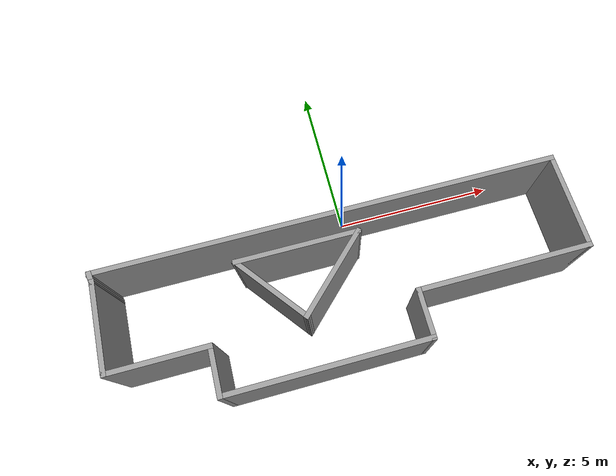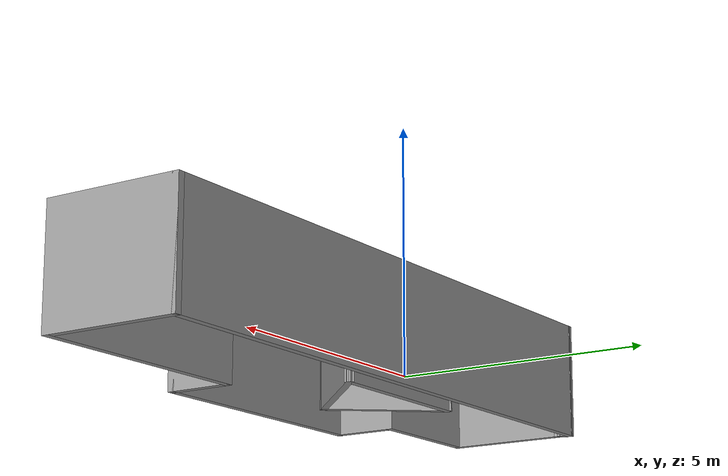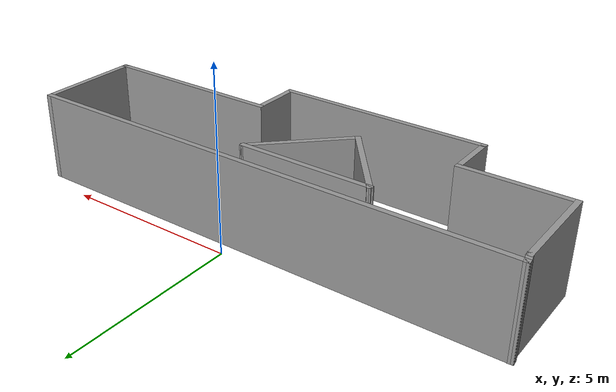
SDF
<?xml version='1.0'?>
<sdf version='1.6'>
  <model name='wuwuwuw'>
    <pose frame=''>-0.521626 -2.52337 0 0 -0 0</pose>
    <link name='Wall_0'>
      <collision name='Wall_0_Collision'>
        <geometry>
          <box>
            <size>2.75 0.15 2.5</size>
          </box>
        </geometry>
        <pose frame=''>0 0 1.25 0 -0 0</pose>
      </collision>
      <visual name='Wall_0_Visual'>
        <pose frame=''>0 0 1.25 0 -0 0</pose>
        <geometry>
          <box>
            <size>2.75 0.15 2.5</size>
          </box>
        </geometry>
        <material>
          <script>
            <uri>file://media/materials/scripts/gazebo.material</uri>
            <name>Gazebo/Grey</name>
          </script>
          <ambient>1 1 1 1</ambient>
        </material>
        <meta>
          <layer>0</layer>
        </meta>
      </visual>
      <pose frame=''>-6.86837 0.543374 0 0 -0 -1.5708</pose>
    </link>
    <link name='Wall_1'>
      <collision name='Wall_1_Collision'>
        <geometry>
          <box>
            <size>3 0.15 2.5</size>
          </box>
        </geometry>
        <pose frame=''>0 0 1.25 0 -0 0</pose>
      </collision>
      <visual name='Wall_1_Visual'>
        <pose frame=''>0 0 1.25 0 -0 0</pose>
        <geometry>
          <box>
            <size>3 0.15 2.5</size>
          </box>
        </geometry>
        <material>
          <script>
            <uri>file://media/materials/scripts/gazebo.material</uri>
            <name>Gazebo/Grey</name>
          </script>
          <ambient>1 1 1 1</ambient>
        </material>
        <meta>
          <layer>0</layer>
        </meta>
      </visual>
      <pose frame=''>-5.44337 -0.756626 0 0 -0 0</pose>
    </link>
    <link name='Wall_10'>
      <collision name='Wall_10_Collision'>
        <geometry>
          <box>
            <size>3.75 0.15 2.5</size>
          </box>
        </geometry>
        <pose frame=''>0 0 1.25 0 -0 0</pose>
      </collision>
      <visual name='Wall_10_Visual'>
        <pose frame=''>0 0 1.25 0 -0 0</pose>
        <geometry>
          <box>
            <size>3.75 0.15 2.5</size>
          </box>
        </geometry>
        <material>
          <script>
            <uri>file://media/materials/scripts/gazebo.material</uri>
            <name>Gazebo/Grey</name>
          </script>
          <ambient>1 1 1 1</ambient>
        </material>
        <meta>
          <layer>0</layer>
        </meta>
      </visual>
      <pose frame=''>-1.10837 1.36337 0 0 -0 0</pose>
    </link>
    <link name='Wall_11'>
      <collision name='Wall_11_Collision'>
        <geometry>
          <box>
            <size>3 0.15 2.5</size>
          </box>
        </geometry>
        <pose frame=''>0 0 1.25 0 -0 0</pose>
      </collision>
      <visual name='Wall_11_Visual'>
        <pose frame=''>0 0 1.25 0 -0 0</pose>
        <geometry>
          <box>
            <size>3 0.15 2.5</size>
          </box>
        </geometry>
        <material>
          <script>
            <uri>file://media/materials/scripts/gazebo.material</uri>
            <name>Gazebo/Grey</name>
          </script>
          <ambient>1 1 1 1</ambient>
        </material>
        <meta>
          <layer>0</layer>
        </meta>
      </visual>
      <pose frame=''>-0.316001 0.355747 0 0 -0 -2.35619</pose>
    </link>
    <link name='Wall_12'>
      <collision name='Wall_12_Collision'>
        <geometry>
          <box>
            <size>2.71372 0.15 2.5</size>
          </box>
        </geometry>
        <pose frame=''>0 0 1.25 0 -0 0</pose>
      </collision>
      <visual name='Wall_12_Visual'>
        <pose frame=''>0 0 1.25 0 -0 0</pose>
        <geometry>
          <box>
            <size>2.71372 0.15 2.5</size>
          </box>
        </geometry>
        <material>
          <script>
            <uri>file://media/materials/scripts/gazebo.material</uri>
            <name>Gazebo/Grey</name>
          </script>
          <ambient>1 1 1 1</ambient>
        </material>
        <meta>
          <layer>0</layer>
        </meta>
      </visual>
      <pose frame=''>-2.116 0.355747 0 0 -0 2.23717</pose>
    </link>
    <link name='Wall_2'>
      <collision name='Wall_2_Collision'>
        <geometry>
          <box>
            <size>1.5 0.15 2.5</size>
          </box>
        </geometry>
        <pose frame=''>0 0 1.25 0 -0 0</pose>
      </collision>
      <visual name='Wall_2_Visual'>
        <pose frame=''>0 0 1.25 0 -0 0</pose>
        <geometry>
          <box>
            <size>1.5 0.15 2.5</size>
          </box>
        </geometry>
        <material>
          <script>
            <uri>file://media/materials/scripts/gazebo.material</uri>
            <name>Gazebo/Grey</name>
          </script>
          <ambient>1 1 1 1</ambient>
        </material>
        <meta>
          <layer>0</layer>
        </meta>
      </visual>
      <pose frame=''>-4.01837 -1.43163 0 0 -0 -1.5708</pose>
    </link>
    <link name='Wall_3'>
      <collision name='Wall_3_Collision'>
        <geometry>
          <box>
            <size>6 0.15 2.5</size>
          </box>
        </geometry>
        <pose frame=''>0 0 1.25 0 -0 0</pose>
      </collision>
      <visual name='Wall_3_Visual'>
        <pose frame=''>0 0 1.25 0 -0 0</pose>
        <geometry>
          <box>
            <size>6 0.15 2.5</size>
          </box>
        </geometry>
        <material>
          <script>
            <uri>file://media/materials/scripts/gazebo.material</uri>
            <name>Gazebo/Grey</name>
          </script>
          <ambient>1 1 1 1</ambient>
        </material>
        <meta>
          <layer>0</layer>
        </meta>
      </visual>
      <pose frame=''>-1.09337 -2.10663 0 0 -0 0</pose>
    </link>
    <link name='Wall_4'>
      <collision name='Wall_4_Collision'>
        <geometry>
          <box>
            <size>1.5 0.15 2.5</size>
          </box>
        </geometry>
        <pose frame=''>0 0 1.25 0 -0 0</pose>
      </collision>
      <visual name='Wall_4_Visual'>
        <pose frame=''>0 0 1.25 0 -0 0</pose>
        <geometry>
          <box>
            <size>1.5 0.15 2.5</size>
          </box>
        </geometry>
        <material>
          <script>
            <uri>file://media/materials/scripts/gazebo.material</uri>
            <name>Gazebo/Grey</name>
          </script>
          <ambient>1 1 1 1</ambient>
        </material>
        <meta>
          <layer>0</layer>
        </meta>
      </visual>
      <pose frame=''>1.83163 -1.43163 0 0 -0 1.5708</pose>
    </link>
    <link name='Wall_5'>
      <collision name='Wall_5_Collision'>
        <geometry>
          <box>
            <size>5.25 0.15 2.5</size>
          </box>
        </geometry>
        <pose frame=''>0 0 1.25 0 -0 0</pose>
      </collision>
      <visual name='Wall_5_Visual'>
        <pose frame=''>0 0 1.25 0 -0 0</pose>
        <geometry>
          <box>
            <size>5.25 0.15 2.5</size>
          </box>
        </geometry>
        <material>
          <script>
            <uri>file://media/materials/scripts/gazebo.material</uri>
            <name>Gazebo/Grey</name>
          </script>
          <ambient>1 1 1 1</ambient>
        </material>
        <meta>
          <layer>0</layer>
        </meta>
      </visual>
      <pose frame=''>4.38163 -0.756626 0 0 -0 0</pose>
    </link>
    <link name='Wall_6'>
      <collision name='Wall_6_Collision'>
        <geometry>
          <box>
            <size>3 0.15 2.5</size>
          </box>
        </geometry>
        <pose frame=''>0 0 1.25 0 -0 0</pose>
      </collision>
      <visual name='Wall_6_Visual'>
        <pose frame=''>0 0 1.25 0 -0 0</pose>
        <geometry>
          <box>
            <size>3 0.15 2.5</size>
          </box>
        </geometry>
        <material>
          <script>
            <uri>file://media/materials/scripts/gazebo.material</uri>
            <name>Gazebo/Grey</name>
          </script>
          <ambient>1 1 1 1</ambient>
        </material>
        <meta>
          <layer>0</layer>
        </meta>
      </visual>
      <pose frame=''>6.93163 0.668374 0 0 -0 1.5708</pose>
    </link>
    <link name='Wall_7'>
      <collision name='Wall_7_Collision'>
        <geometry>
          <box>
            <size>14 0.15 2.5</size>
          </box>
        </geometry>
        <pose frame=''>0 0 1.25 0 -0 0</pose>
      </collision>
      <visual name='Wall_7_Visual'>
        <pose frame=''>0 0 1.25 0 -0 0</pose>
        <geometry>
          <box>
            <size>14 0.15 2.5</size>
          </box>
        </geometry>
        <material>
          <script>
            <uri>file://media/materials/scripts/gazebo.material</uri>
            <name>Gazebo/Grey</name>
          </script>
          <ambient>1 1 1 1</ambient>
        </material>
        <meta>
          <layer>0</layer>
        </meta>
      </visual>
      <pose frame=''>0.006626 2.09337 0 0 -0 3.14159</pose>
    </link>
    <link name='Wall_8'>
      <collision name='Wall_8_Collision'>
        <geometry>
          <box>
            <size>0.404951 0.15 2.5</size>
          </box>
        </geometry>
        <pose frame=''>0 0 1.25 0 -0 0</pose>
      </collision>
      <visual name='Wall_8_Visual'>
        <pose frame=''>0 0 1.25 0 -0 0</pose>
        <geometry>
          <box>
            <size>0.404951 0.15 2.5</size>
          </box>
        </geometry>
        <material>
          <script>
            <uri>file://media/materials/scripts/gazebo.material</uri>
            <name>Gazebo/Grey</name>
          </script>
          <ambient>1 1 1 1</ambient>
        </material>
        <meta>
          <layer>0</layer>
        </meta>
      </visual>
      <pose frame=''>-6.89337 1.96837 0 0 -0 -1.3734</pose>
    </link>
    <static>1</static>
  </model>
</sdf>
